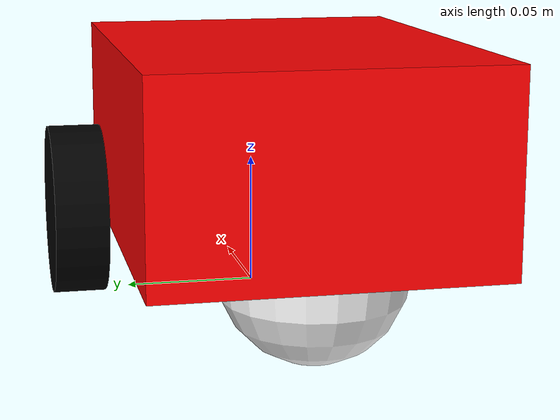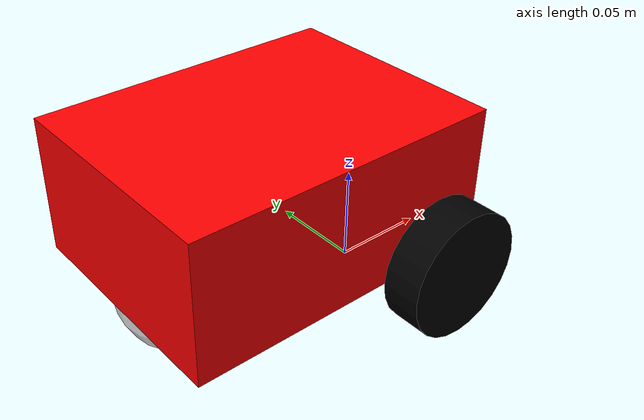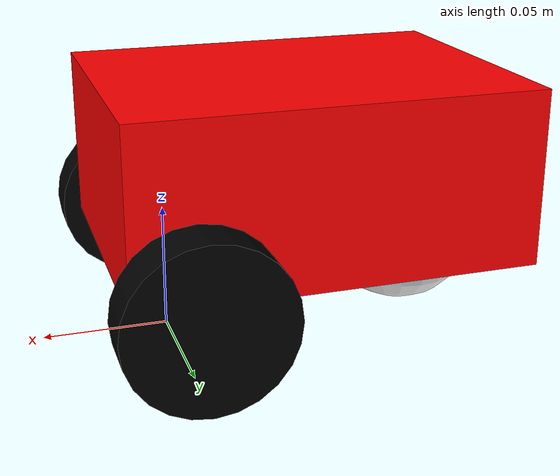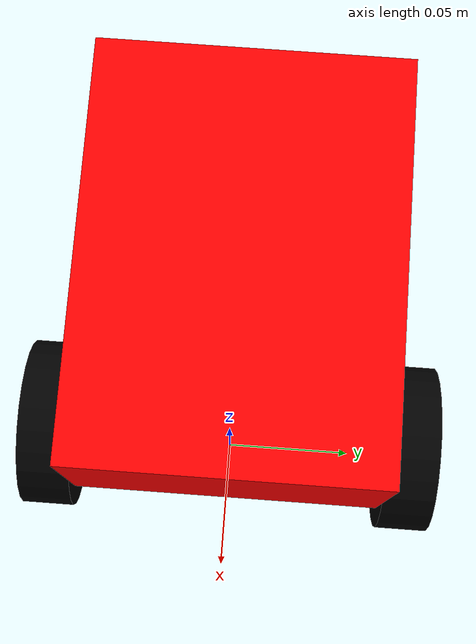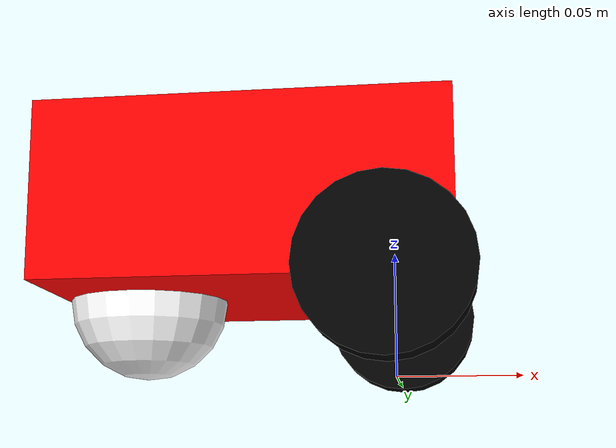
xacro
<?xml version="1.0"?>
<robot xmlns:xacro="http://www.ros.org/wiki/xacro">

        <xacro:include filename="inertial_macros.xacro" />

        <xacro:property name="chassis_length" value="0.16" />
        <xacro:property name="chassis_width" value="0.12" />
        <xacro:property name="chassis_height" value="0.07" />
        <xacro:property name="chassis_mass" value="0.5" />
        <xacro:property name="chassis_origin_x_offset" value="0.025" />
        <xacro:property name="wheel_radius" value="0.0325" />
        <xacro:property name="wheel_thickness" value="0.02" />
        <xacro:property name="wheel_mass" value="0.05" />
        <xacro:property name="wheel_origin_y_offset"
                value="${chassis_width / 2 + wheel_thickness / 2}" />
        <xacro:property name="wheel_origin_z_offset" value="${wheel_radius}" />
        <xacro:property name="caster_wheel_radius" value="${wheel_radius}" />
        <xacro:property name="caster_wheel_mass" value="0.03" />
        <xacro:property name="caster_wheel_origin_x_offset" value="${chassis_length - caster_wheel_radius}" />
        <xacro:property name="caster_wheel_origin_z_offset"
                value="${caster_wheel_radius}" />

        <material name="white">
                <color rgba="1 1 1 1" />
        </material>

        <material name="orange">
                <color rgba="1 0.3 0.1 1" />
        </material>

        <material name="blue">
                <color rgba="0.2 0.2 1 1" />
        </material>

        <material name="black">
                <color rgba="0 0 0 1" />
        </material>

        <material name="red">
                <color rgba="1 0 0 1" />
        </material>

        <!-- BASE LINK -->

        <link name="base_link">

        </link>

        <!-- BASE_FOOTPRINT LINK -->

        <joint name="base_footprint_joint" type="fixed">
                <parent link="base_link" />
                <child link="base_footprint" />
                <origin xyz="0 0 0" rpy="0 0 0" />
        </joint>

        <link name="base_footprint">
        </link>

        <!-- CHASSIS LINK -->

        <joint name="chassis_joint" type="fixed">
                <parent link="base_link" />
                <child link="chassis" />
                <origin xyz="${chassis_origin_x_offset} 0 ${wheel_radius}" />
        </joint>

        <link name="chassis">
                <visual>
                        <origin xyz="${-chassis_length/2} 0 ${chassis_height/2}" />
                        <geometry>
                                <box size="${chassis_length} ${chassis_width} ${chassis_height}" />
                        </geometry>
                        <material name="red" />
                </visual>
                <collision>
                        <origin xyz="${-chassis_length/2} 0 ${chassis_height/2}" />
                        <geometry>
                                <box size="${chassis_length} ${chassis_width} ${chassis_height}" />
                        </geometry>
                </collision>
                <xacro:inertial_box
                        mass="${chassis_mass}"
                        x="${chassis_length}"
                        y="${chassis_width}"
                        z="${chassis_height}">
                        <origin xyz="${-chassis_length/2} 0 ${chassis_height/2}" rpy="0 0 0" />
                </xacro:inertial_box>
        </link>

        <gazebo reference="chassis">
                <material>Gazebo/Red</material>
        </gazebo>

        <!-- LEFT WHEEL LINK -->

        <joint name="left_wheel_joint" type="continuous">
                <parent link="base_link" />
                <child link="left_wheel" />
                <origin xyz="0 ${wheel_origin_y_offset} ${wheel_origin_z_offset}" rpy="-${pi/2} 0 0" />
                <axis xyz="0 0 1" />
        </joint>

        <link name="left_wheel">
                <visual>
                        <geometry>
                                <cylinder radius="${wheel_radius}" length="${wheel_thickness}" />
                        </geometry>
                        <material name="black" />
                </visual>
                <collision>
                        <geometry>
                                <sphere radius="${wheel_radius}" />
                        </geometry>
                </collision>
                <xacro:inertial_cylinder mass="${wheel_mass}" length="${wheel_thickness}"
                        radius="${wheel_radius}">
                        <origin xyz="0 0 0" rpy="0 0 0" />
                </xacro:inertial_cylinder>
        </link>

        <gazebo reference="left_wheel">
                <material>Gazebo/Black</material>
        </gazebo>

        <!-- RIGHT WHEEL LINK -->

        <joint name="right_wheel_joint" type="continuous">
                <parent link="base_link" />
                <child link="right_wheel" />
                <origin xyz="0 ${-wheel_origin_y_offset} ${wheel_origin_z_offset}" rpy="${pi/2} 0 0" />
                <axis xyz="0 0 -1" />
        </joint>

        <link name="right_wheel">
                <visual>
                        <geometry>
                                <cylinder radius="${wheel_radius}" length="${wheel_thickness}" />
                        </geometry>
                        <material name="black" />
                </visual>
                <collision>
                        <geometry>
                                <sphere radius="${wheel_radius}" />
                        </geometry>
                </collision>
                <xacro:inertial_cylinder mass="${wheel_mass}" length="${wheel_thickness}"
                        radius="${wheel_radius}">
                        <origin xyz="0 0 0" rpy="0 0 0" />
                </xacro:inertial_cylinder>
        </link>

        <gazebo reference="right_wheel">
                <material>Gazebo/Black</material>
        </gazebo>

        <!-- CASTER WHEEL LINK -->

        <joint name="caster_wheel_joint" type="fixed">
                <parent link="chassis" />
                <child link="caster_wheel" />
                <origin xyz="${-caster_wheel_origin_x_offset} 0 0" />
        </joint>

        <link name="caster_wheel">
                <visual>
                        <geometry>
                                <sphere radius="${caster_wheel_radius}" />
                        </geometry>
                        <material name="white" />
                </visual>
                <collision>
                        <geometry>
                                <sphere radius="${caster_wheel_radius}" />
                        </geometry>
                </collision>
                <xacro:inertial_sphere mass="${caster_wheel_mass}" radius="${caster_wheel_radius}">
                        <origin xyz="0 0 0" rpy="0 0 0" />
                </xacro:inertial_sphere>
        </link>

        <gazebo reference="caster_wheel">
                <material>Gazebo/White</material>
                <mu1 value="0.001" />
                <mu2 value="0.001" />
        </gazebo>
</robot>
